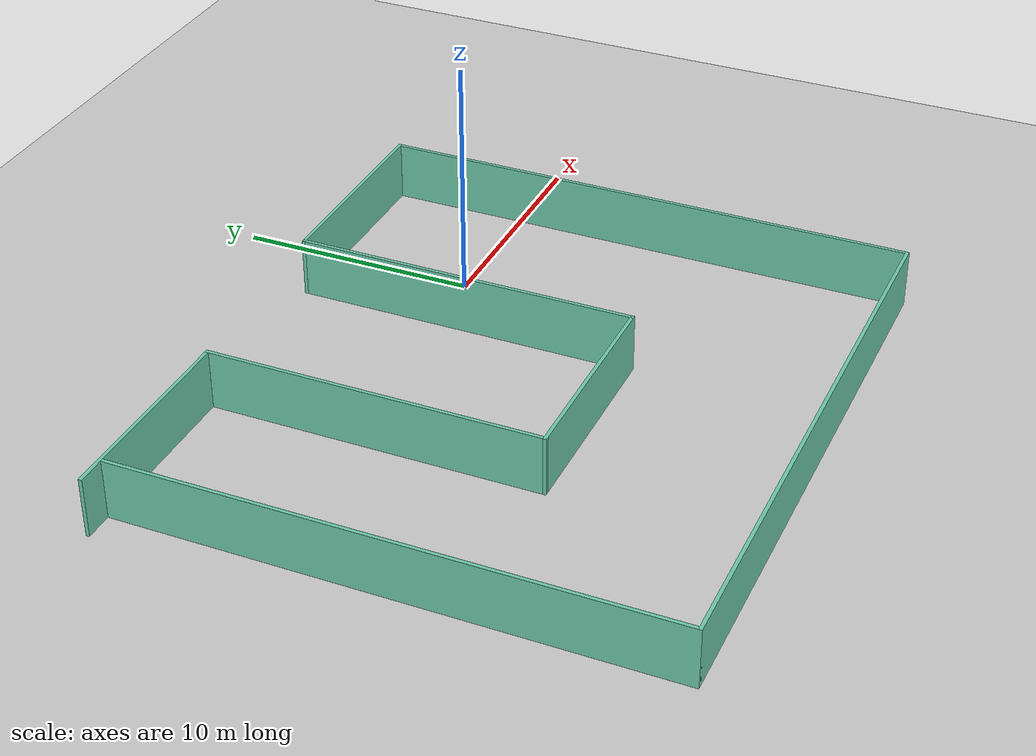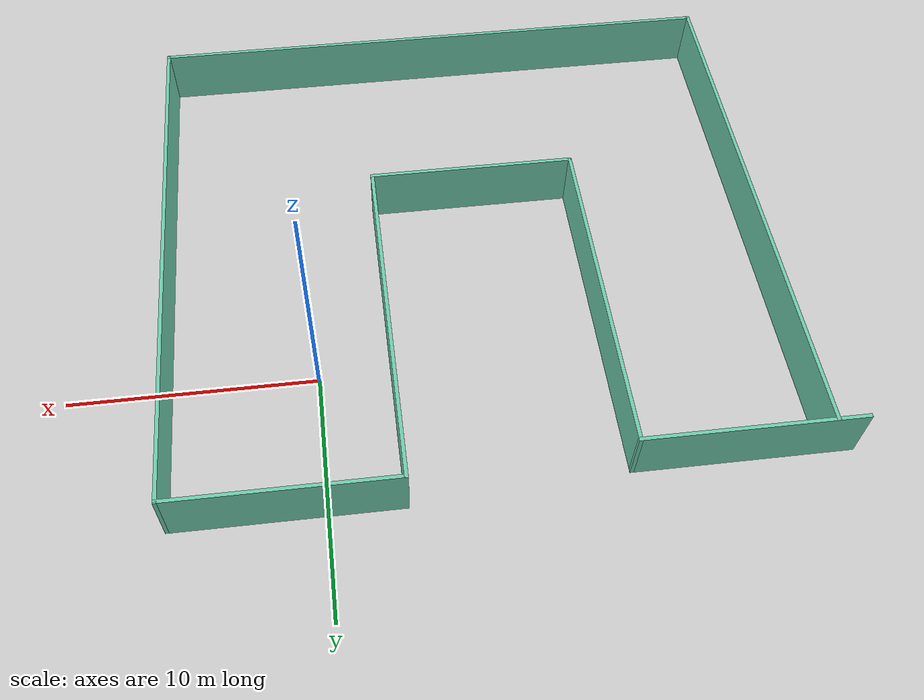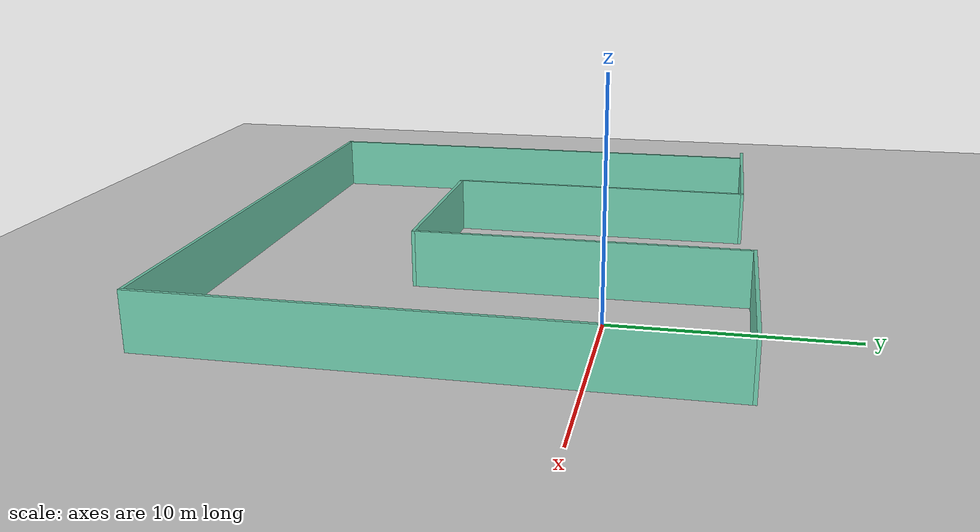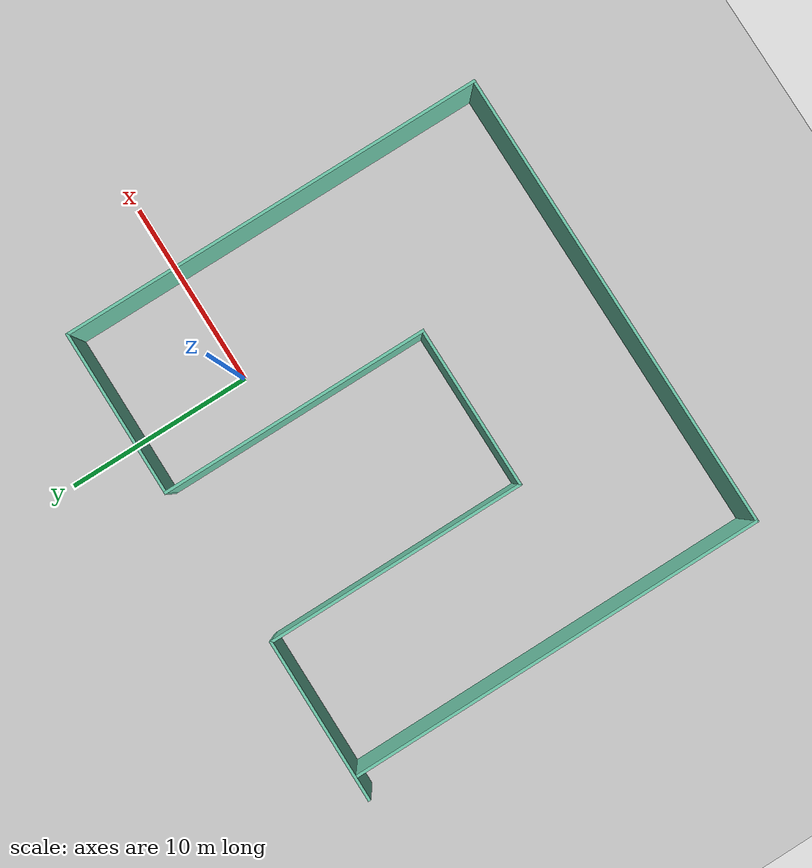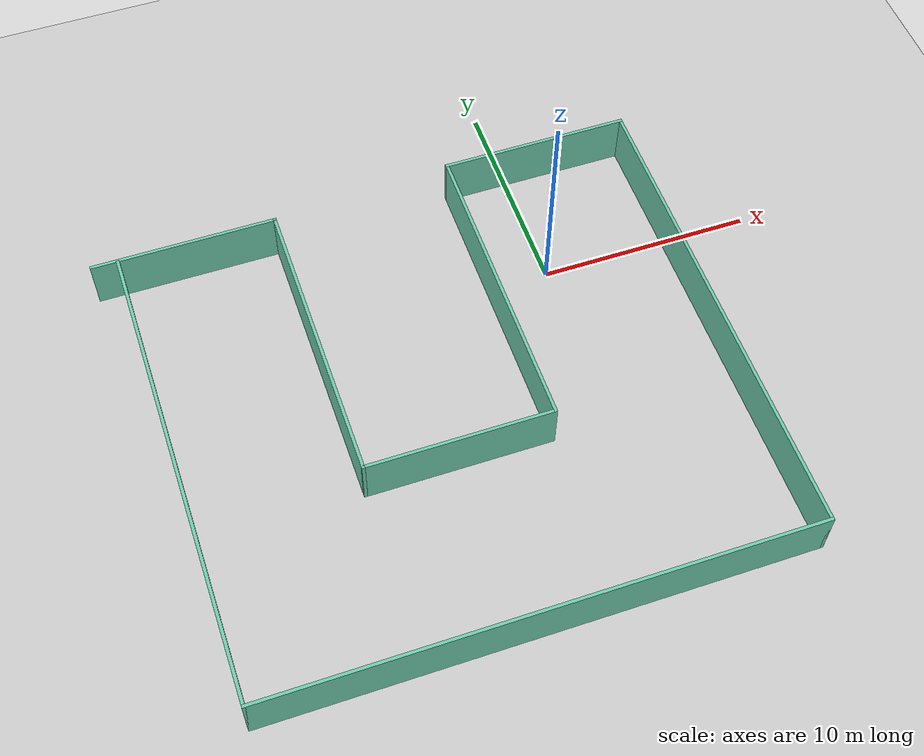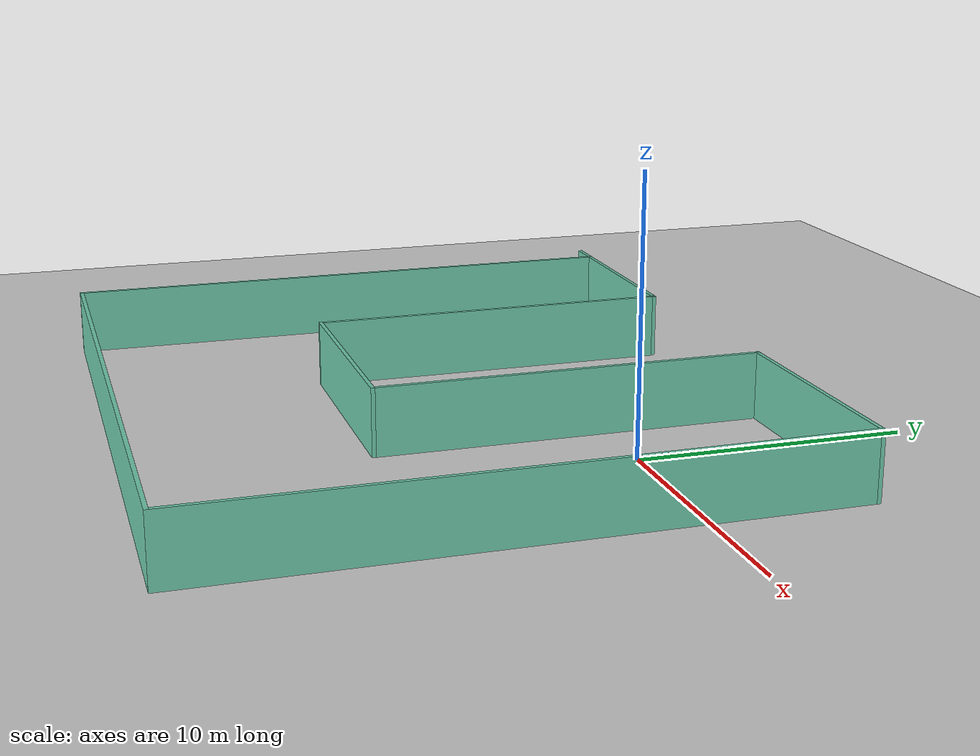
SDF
<sdf version="1.6">
 <world name="default">
  <light name="sun" type="directional">
   <pose>0 0 10 0 -0 0</pose>
   <diffuse>0.8 0.8 0.8 1</diffuse>
   <specular>0.1 0.1 0.1 1</specular>
   <attenuation>
    <range>1000</range>
    <constant>0.9</constant>
    <linear>0.01</linear>
    <quadratic>0.001</quadratic>
   </attenuation>
   <direction>-0.5 0.5 -1</direction>
  </light>
  <model name="ground_plane">
   <static>1</static>
   <link name="link">
    <collision name="collision">
     <geometry><plane><normal>0 0 1</normal><size>100 100</size></plane></geometry>
     <surface><friction><ode><mu>100</mu><mu2>50</mu2></ode></friction></surface>
    </collision>
    <visual name="visual">
     <cast_shadows>0</cast_shadows>
     <geometry><plane><normal>0 0 1</normal><size>100 100</size></plane></geometry>
     <material>
      <script><uri>file://media/materials/scripts/gazebo.material</uri><name>Gazebo/Grey</name></script>
     </material>
    </visual>
   </link>
  </model>
  <gravity>0 0 -9.8</gravity>
  <magnetic_field>6e-06 2.3e-05 -4.2e-05</magnetic_field>
  <atmosphere type="adiabatic"/>
  <physics name="default_physics" default="0" type="ode">
   <max_step_size>0.001</max_step_size>
   <real_time_factor>1</real_time_factor>
   <real_time_update_rate>1000</real_time_update_rate>
  </physics>
  <scene><ambient>0.4 0.4 0.4 1</ambient><background>0.7 0.7 0.7 1</background><shadows>1</shadows></scene>
  <spherical_coordinates>
   <surface_model>EARTH_WGS84</surface_model>
   <latitude_deg>0</latitude_deg>
   <longitude_deg>0</longitude_deg>
   <elevation>0</elevation>
   <heading_deg>0</heading_deg>
  </spherical_coordinates>
  <model name="Untitled">
   <pose>-7.12067 -5.61236 0 0 -0 0</pose>
   <link name="Wall_0">
    <collision name="Wall_0_Collision">
     <geometry><box><size>22.5 0.15 2.5</size></box></geometry>
     <pose>0 0 1.25 0 -0 0</pose>
    </collision>
    <visual name="Wall_0_Visual">
     <pose>0 0 1.25 0 -0 0</pose>
     <geometry><box><size>22.5 0.15 2.5</size></box></geometry>
     <material>
      <script><uri>file://media/materials/scripts/gazebo.material</uri><name>Gazebo/Grey</name></script>
      <ambient>0.435294 0.796078 0.67451 1</ambient>
     </material>
    </visual>
    <pose>-11.825 -0.25 0 0 0 -1.5708</pose>
   </link>
   <link name="Wall_1">
    <collision name="Wall_1_Collision">
     <geometry><box><size>25 0.15 2.5</size></box></geometry>
     <pose>0 0 1.25 0 -0 0</pose>
    </collision>
    <visual name="Wall_1_Visual">
     <pose>0 0 1.25 0 -0 0</pose>
     <geometry><box><size>25 0.15 2.5</size></box></geometry>
     <material>
      <script><uri>file://media/materials/scripts/gazebo.material</uri><name>Gazebo/Grey</name></script>
      <ambient>0.435294 0.796078 0.67451 1</ambient>
     </material>
    </visual>
    <pose>0.6 -11.425 0 0 -0 0</pose>
   </link>
   <link name="Wall_2">
    <collision name="Wall_2_Collision">
     <geometry><box><size>23 0.15 2.5</size></box></geometry>
     <pose>0 0 1.25 0 -0 0</pose>
    </collision>
    <visual name="Wall_2_Visual">
     <pose>0 0 1.25 0 -0 0</pose>
     <geometry><box><size>23 0.15 2.5</size></box></geometry>
     <material>
      <script><uri>file://media/materials/scripts/gazebo.material</uri><name>Gazebo/Grey</name></script>
      <ambient>0.435294 0.796078 0.67451 1</ambient>
     </material>
    </visual>
    <pose>13.025 0 0 0 -0 1.5708</pose>
   </link>
   <link name="Wall_3">
    <collision name="Wall_3_Collision">
     <geometry><box><size>9 0.15 2.5</size></box></geometry>
     <pose>0 0 1.25 0 -0 0</pose>
    </collision>
    <visual name="Wall_3_Visual">
     <pose>0 0 1.25 0 -0 0</pose>
     <geometry><box><size>9 0.15 2.5</size></box></geometry>
     <material>
      <script><uri>file://media/materials/scripts/gazebo.material</uri><name>Gazebo/Grey</name></script>
      <ambient>0.435294 0.796078 0.67451 1</ambient>
     </material>
    </visual>
    <pose>8.6 11.425 0 0 -0 3.14159</pose>
   </link>
   <link name="Wall_4">
    <collision name="Wall_4_Collision">
     <geometry><box><size>14.5 0.15 2.5</size></box></geometry>
     <pose>0 0 1.25 0 -0 0</pose>
    </collision>
    <visual name="Wall_4_Visual">
     <pose>0 0 1.25 0 -0 0</pose>
     <geometry><box><size>14.5 0.15 2.5</size></box></geometry>
     <material>
      <script><uri>file://media/materials/scripts/gazebo.material</uri><name>Gazebo/Grey</name></script>
      <ambient>0.435294 0.796078 0.67451 1</ambient>
     </material>
    </visual>
    <pose>4.175 4.25 0 0 0 -1.5708</pose>
   </link>
   <link name="Wall_5">
    <collision name="Wall_5_Collision">
     <geometry><box><size>8.75 0.15 2.5</size></box></geometry>
     <pose>0 0 1.25 0 -0 0</pose>
    </collision>
    <visual name="Wall_5_Visual">
     <pose>0 0 1.25 0 -0 0</pose>
     <geometry><box><size>8.75 0.15 2.5</size></box></geometry>
     <material>
      <script><uri>file://media/materials/scripts/gazebo.material</uri><name>Gazebo/Grey</name></script>
      <ambient>0.435294 0.796078 0.67451 1</ambient>
     </material>
    </visual>
    <pose>-0.125 -2.925 0 0 -0 3.14159</pose>
   </link>
   <link name="Wall_6">
    <collision name="Wall_6_Collision">
     <geometry><box><size>14 0.15 2.5</size></box></geometry>
     <pose>0 0 1.25 0 -0 0</pose>
    </collision>
    <visual name="Wall_6_Visual">
     <pose>0 0 1.25 0 -0 0</pose>
     <geometry><box><size>14 0.15 2.5</size></box></geometry>
     <material>
      <script><uri>file://media/materials/scripts/gazebo.material</uri><name>Gazebo/Grey</name></script>
      <ambient>0.435294 0.796078 0.67451 1</ambient>
     </material>
    </visual>
    <pose>-4.425 4 0 0 -0 1.5708</pose>
   </link>
   <link name="Wall_7">
    <collision name="Wall_7_Collision">
     <geometry><box><size>8.75 0.15 2.5</size></box></geometry>
     <pose>0 0 1.25 0 -0 0</pose>
    </collision>
    <visual name="Wall_7_Visual">
     <pose>0 0 1.25 0 -0 0</pose>
     <geometry><box><size>8.75 0.15 2.5</size></box></geometry>
     <material>
      <script><uri>file://media/materials/scripts/gazebo.material</uri><name>Gazebo/Grey</name></script>
      <ambient>0.435294 0.796078 0.67451 1</ambient>
     </material>
    </visual>
    <pose>-8.725 10.925 0 0 -0 3.14159</pose>
   </link>
   <static>1</static>
  </model>
 </world>
</sdf>
